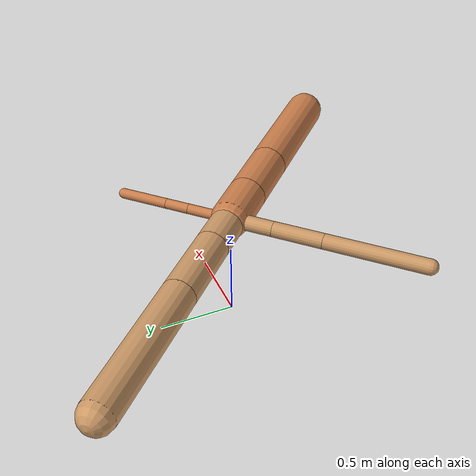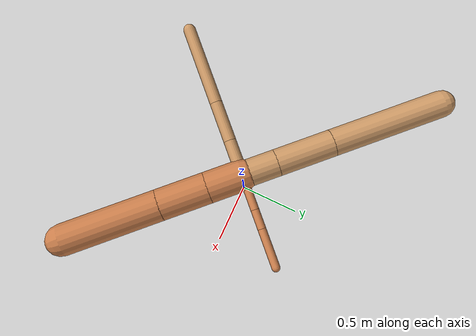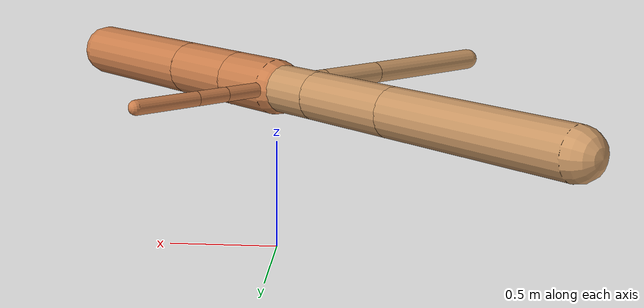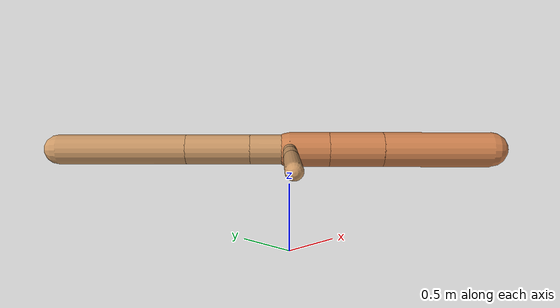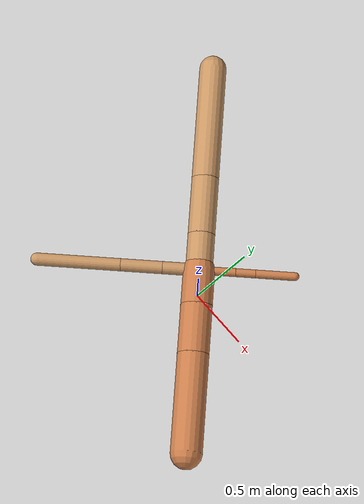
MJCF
<?xml version="1.0" ?>
<mujoco model="ant">

	<compiler angle="degree" coordinate="local" inertiafromgeom="true"/>

	<option integrator="RK4" timestep="0.01"/>

	<custom>

		<numeric data="0.0 0.0 0.55 1.0 0.0 0.0 0.0 0.0 1.0 0.0 -1.0 0.0 -1.0 0.0 1.0" name="init_qpos"/>

	</custom>

	<default>

		<joint armature="1" damping="1" limited="true"/>

		<geom conaffinity="0" condim="3" density="5.0" friction="1.5 0.1 0.1" margin="0.01" rgba="0.8 0.6 0.4 1"/>

	</default>

	<worldbody>

		<body name="torso" pos="0 0 0.75">

			<geom name="torso_geom" pos="0 0 0" size="0.10817521220595255" type="sphere"/>

			<!--joint armature="0" damping="0" limited="false" margin="0.01" name="root" pos="0 0 0" type="free"/-->

			<body name="front_left_leg" pos="0 0 0">

				<geom fromto="0 0 0 0.2 0.2 0" name="aux_1_geom" size="0.03269005675511082" type="capsule" rgba=".8 .5 .3 1"/>

				<body name="aux_1" pos="0.2 0.2 0">

					<joint axis="0 0 1" name="hip_1" pos="0.0 0.0 0.0" range="-40 40" type="hinge"/>

					<geom fromto="0 0 0 0.10787164678579111 0.10787164678579111 0" name="left_leg_geom" size="0.03269005675511082" type="capsule" rgba=".8 .5 .3 1"/>

					<body pos="0.10787164678579111 0.10787164678579111 0" name="front_left_foot">

						<joint axis="-1 1 0" name="ankle_1" pos="0.0 0.0 0.0" range="30 100" type="hinge"/>

						<geom fromto="0 0 0 0.21574329357158223 0.21574329357158223 0" name="left_ankle_geom" size="0.03269005675511082" type="capsule" rgba=".8 .5 .3 1"/>

					</body>

				</body>

			</body>

			<body name="front_right_leg" pos="0 0 0">

				<geom fromto="0 0 0 -0.2 0.2 0" name="aux_2_geom" size="0.10648924048633893" type="capsule"/>

				<body name="aux_2" pos="-0.2 0.2 0">

					<joint axis="0 0 1" name="hip_2" pos="0.0 0.0 0.0" range="-40 40" type="hinge"/>

					<geom fromto="0 0 0 -0.3235998079059844 0.3235998079059844 0" name="right_leg_geom" size="0.10648924048633893" type="capsule"/>

					<body pos="-0.3235998079059844 0.3235998079059844 0" name="front_right_foot">

						<joint axis="1 1 0" name="ankle_2" pos="0.0 0.0 0.0" range="-100 -30" type="hinge"/>

						<geom fromto="0 0 0 -0.6471996158119688 0.6471996158119688 0" name="right_ankle_geom" size="0.10648924048633893" type="capsule"/>

					</body>

				</body>

			</body>

			<body name="left_back_leg" pos="0 0 0">

				<geom fromto="0 0 0 -0.2 -0.2 0" name="aux_3_geom" size="0.049288129267065134" type="capsule"/>

				<body name="aux_3" pos="-0.2 -0.2 0">

					<joint axis="0 0 1" name="hip_3" pos="0.0 0.0 0.0" range="-40 40" type="hinge"/>

					<geom fromto="0 0 0 -0.22828492428337663 -0.22828492428337663 0" name="back_leg_geom" size="0.049288129267065134" type="capsule"/>

					<body pos="-0.22828492428337663 -0.22828492428337663 0" name="left_back_foot">

						<joint axis="-1 1 0" name="ankle_3" pos="0.0 0.0 0.0" range="-100 -30" type="hinge"/>

						<geom fromto="0 0 0 -0.45656984856675326 -0.45656984856675326 0" name="third_ankle_geom" size="0.049288129267065134" type="capsule"/>

					</body>

				</body>

			</body>

			<body name="right_back_leg" pos="0 0 0">

				<geom fromto="0 0 0 0.2 -0.2 0" name="aux_4_geom" size="0.12407468070017391" type="capsule" rgba=".8 .5 .3 1"/>

				<body name="aux_4" pos="0.2 -0.2 0">

					<joint axis="0 0 1" name="hip_4" pos="0.0 0.0 0.0" range="-40 40" type="hinge"/>

					<geom fromto="0 0 0 0.27243441866843393 -0.27243441866843393 0" name="rightback_leg_geom" size="0.12407468070017391" type="capsule" rgba=".8 .5 .3 1"/>

					<body pos="0.27243441866843393 -0.27243441866843393 0" name="right_back_foot">

						<joint axis="1 1 0" name="ankle_4" pos="0.0 0.0 0.0" range="30 100" type="hinge"/>

						<geom fromto="0 0 0 0.5448688373368679 -0.5448688373368679 0" name="fourth_ankle_geom" size="0.12407468070017391" type="capsule" rgba=".8 .5 .3 1"/>

					</body>

				</body>

			</body>

		</body>

	</worldbody>

	<actuator>

		<motor ctrllimited="true" ctrlrange="-1.0 1.0" joint="hip_4" gear="150"/>

		<motor ctrllimited="true" ctrlrange="-1.0 1.0" joint="ankle_4" gear="150"/>

		<motor ctrllimited="true" ctrlrange="-1.0 1.0" joint="hip_1" gear="150"/>

		<motor ctrllimited="true" ctrlrange="-1.0 1.0" joint="ankle_1" gear="150"/>

		<motor ctrllimited="true" ctrlrange="-1.0 1.0" joint="hip_2" gear="150"/>

		<motor ctrllimited="true" ctrlrange="-1.0 1.0" joint="ankle_2" gear="150"/>

		<motor ctrllimited="true" ctrlrange="-1.0 1.0" joint="hip_3" gear="150"/>

		<motor ctrllimited="true" ctrlrange="-1.0 1.0" joint="ankle_3" gear="150"/>

	</actuator>

</mujoco>
